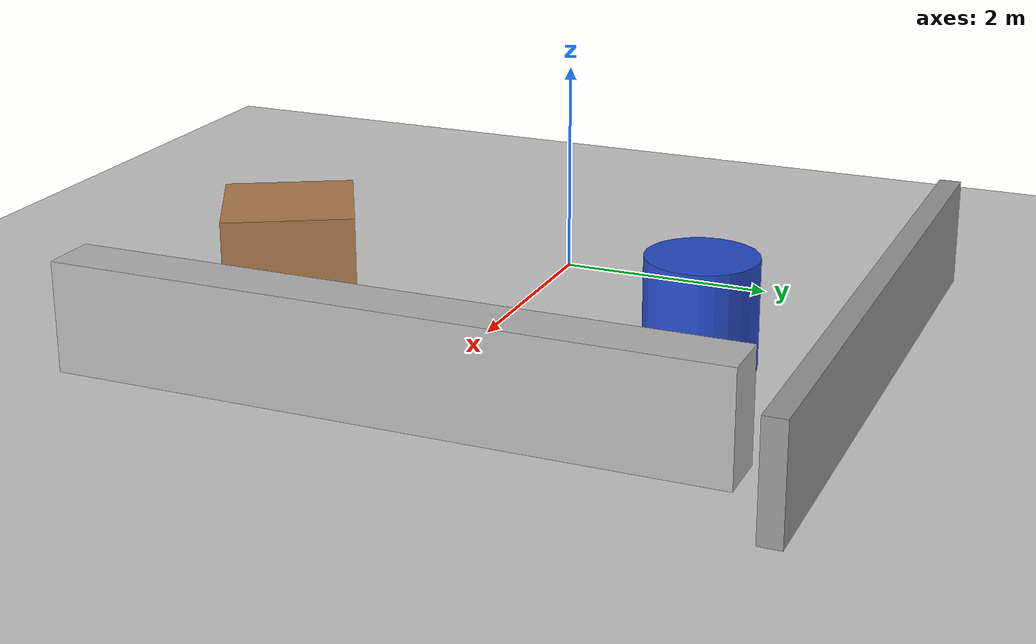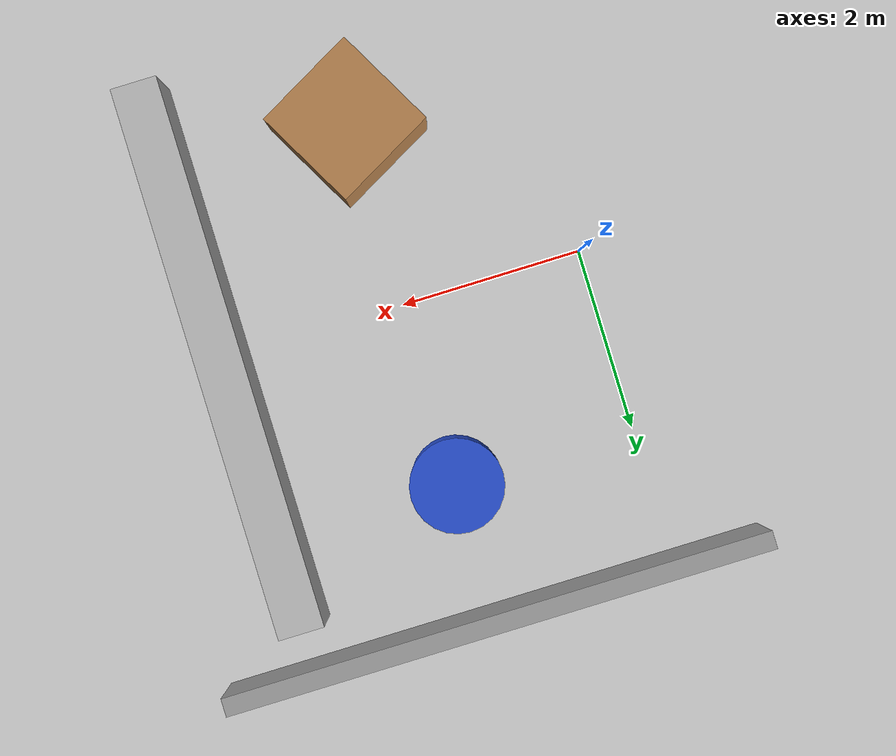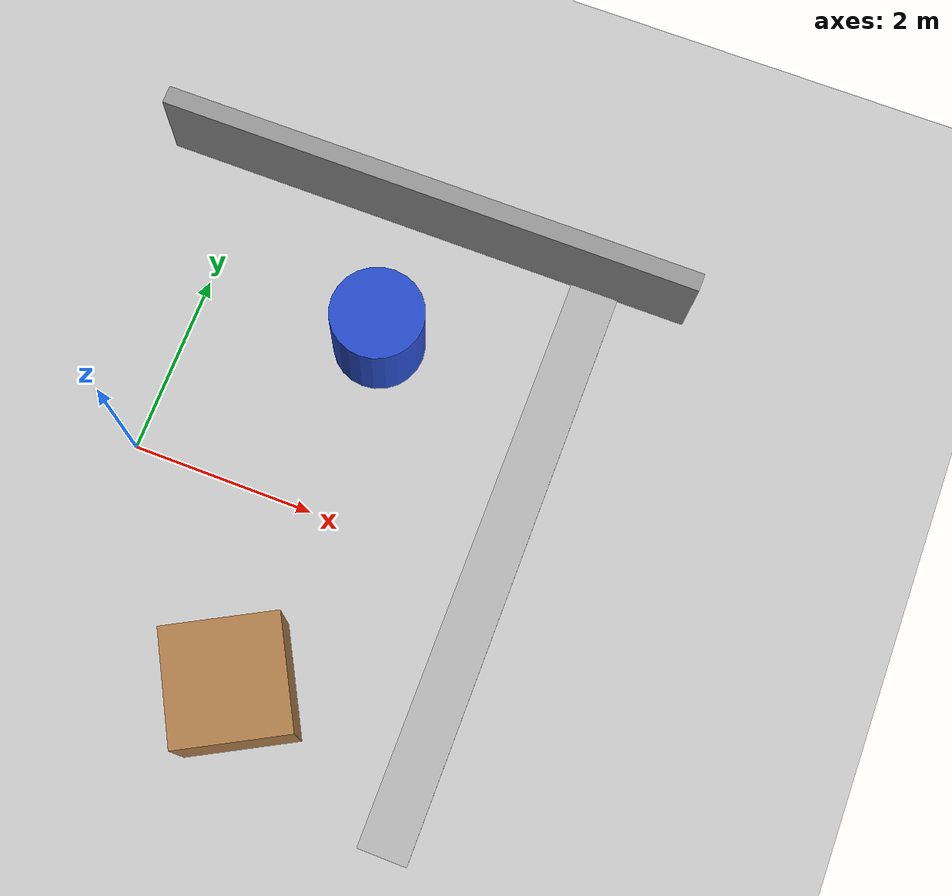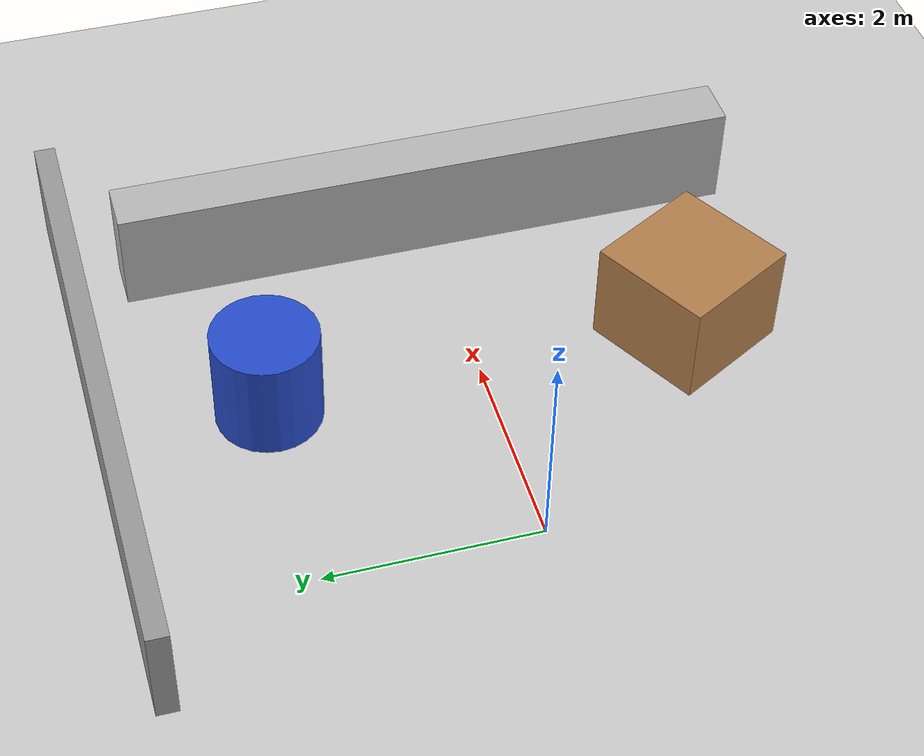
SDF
<?xml version="1.0" ?>
<sdf version="1.5">
  <world name="default">
    <!-- A global light source -->
    <include>
      <uri>model://sun</uri>
    </include>

    <!-- A ground plane -->
    <include>
      <uri>model://ground_plane</uri>
    </include>

    <!-- Obstacle 1: A brick wall in front -->
    <model name="wall_1">
      <pose>4 0 0.5 0 0 0</pose>
      <static>true</static>
      <link name="link">
        <collision name="collision">
          <geometry>
            <box>
              <size>0.5 6 1</size>
            </box>
          </geometry>
        </collision>
        <visual name="visual">
          <geometry>
            <box>
              <size>0.5 6 1</size>
            </box>
          </geometry>
          <material>
            <script>
              <uri>file://media/materials/scripts/gazebo.material</uri>
              <name>Gazebo/Brick</name>
            </script>
          </material>
        </visual>
      </link>
    </model>

    <!-- Obstacle 2: A blue cylinder to the left -->
    <model name="cylinder_1">
      <pose>2 2 0.5 0 0 0</pose>
      <static>true</static>
      <link name="link">
        <collision name="collision">
          <geometry>
            <cylinder>
              <radius>0.5</radius>
              <length>1.0</length>
            </cylinder>
          </geometry>
        </collision>
        <visual name="visual">
          <geometry>
            <cylinder>
              <radius>0.5</radius>
              <length>1.0</length>
            </cylinder>
          </geometry>
          <material>
            <script>
              <uri>file://media/materials/scripts/gazebo.material</uri>
              <name>Gazebo/Blue</name>
            </script>
          </material>
        </visual>
      </link>
    </model>

    <!-- Obstacle 3: A wooden box to the right -->
    <model name="box_1">
      <pose>2 -2 0.5 0 0 0.5</pose>
      <static>true</static>
      <link name="link">
        <collision name="collision">
          <geometry>
            <box>
              <size>1.2 1.2 1</size>
            </box>
          </geometry>
        </collision>
        <visual name="visual">
          <geometry>
            <box>
              <size>1.2 1.2 1</size>
            </box>
          </geometry>
          <material>
            <script>
              <uri>file://media/materials/scripts/gazebo.material</uri>
              <name>Gazebo/Wood</name>
            </script>
          </material>
        </visual>
      </link>
    </model>

    <!-- Obstacle 4: A long side wall -->
    <model name="wall_2">
      <pose>2 3.5 0.5 0 0 0</pose>
      <static>true</static>
      <link name="link">
        <collision name="collision">
          <geometry>
            <box>
              <size>6 0.2 1</size>
            </box>
          </geometry>
        </collision>
        <visual name="visual">
          <geometry>
            <box>
              <size>6 0.2 1</size>
            </box>
          </geometry>
          <material>
            <script>
              <uri>file://media/materials/scripts/gazebo.material</uri>
              <name>Gazebo/Grey</name>
            </script>
          </material>
        </visual>
      </link>
    </model>
  </world>
</sdf>
